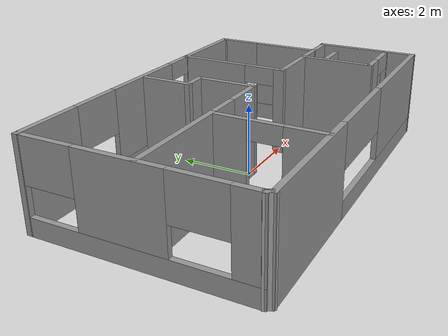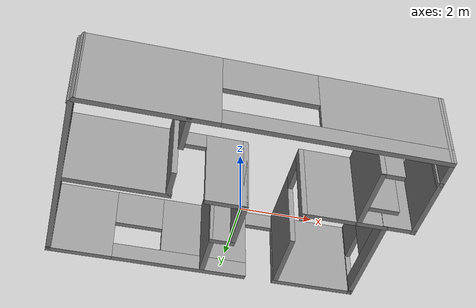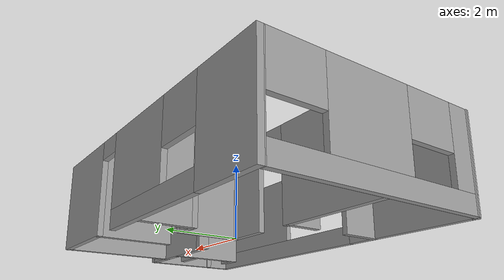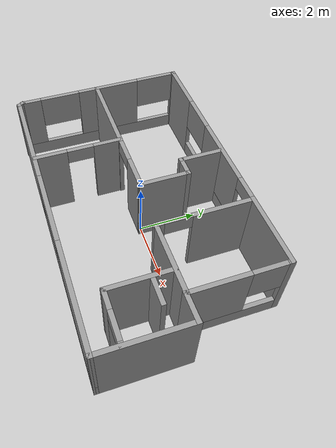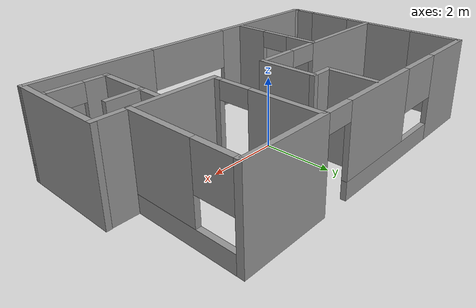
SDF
<?xml version='1.0'?>
<sdf version='1.6'>
  <model name='HouseDoors'>
    <pose frame=''>-0.013482 -0.004027 0 0 -0 0</pose>
    <link name='Wall_30'>
      <pose frame=''>0.053047 -2.98078 0 0 -0 -0.001213</pose>
      <visual name='Wall_30_Visual_0'>
        <pose frame=''>-3.13618 0 1.25 0 -0 0</pose>
        <geometry>
          <box>
            <size>3.74957 0.15 2.5</size>
          </box>
        </geometry>
        <material>
          <script>
            <uri>file://media/materials/scripts/gazebo.material</uri>
            <name>Gazebo/Grey</name>
          </script>
          <ambient>1 1 1 1</ambient>
        </material>
        <meta>
          <layer>0</layer>
        </meta>
      </visual>
      <collision name='Wall_30_Collision_0'>
        <geometry>
          <box>
            <size>3.74957 0.15 2.5</size>
          </box>
        </geometry>
        <pose frame=''>-3.13618 0 1.25 0 -0 0</pose>
      </collision>
      <visual name='Wall_30_Visual_1'>
        <pose frame=''>1.87479 0 0.25 0 -0 0</pose>
        <geometry>
          <box>
            <size>6.27236 0.15 0.5</size>
          </box>
        </geometry>
        <material>
          <script>
            <uri>file://media/materials/scripts/gazebo.material</uri>
            <name>Gazebo/Grey</name>
          </script>
          <ambient>1 1 1 1</ambient>
        </material>
        <meta>
          <layer>0</layer>
        </meta>
      </visual>
      <collision name='Wall_30_Collision_1'>
        <geometry>
          <box>
            <size>6.27236 0.15 0.5</size>
          </box>
        </geometry>
        <pose frame=''>1.87479 0 0.25 0 -0 0</pose>
      </collision>
      <visual name='Wall_30_Visual_2'>
        <pose frame=''>3.19383 0 1.5 0 -0 0</pose>
        <geometry>
          <box>
            <size>3.63428 0.15 2</size>
          </box>
        </geometry>
        <material>
          <script>
            <uri>file://media/materials/scripts/gazebo.material</uri>
            <name>Gazebo/Grey</name>
          </script>
          <ambient>1 1 1 1</ambient>
        </material>
        <meta>
          <layer>0</layer>
        </meta>
      </visual>
      <collision name='Wall_30_Collision_2'>
        <geometry>
          <box>
            <size>3.63428 0.15 2</size>
          </box>
        </geometry>
        <pose frame=''>3.19383 0 1.5 0 -0 0</pose>
      </collision>
      <visual name='Wall_30_Visual_3'>
        <pose frame=''>0.057646 0 1.9 0 -0 0</pose>
        <geometry>
          <box>
            <size>2.63808 0.15 1.2</size>
          </box>
        </geometry>
        <material>
          <script>
            <uri>file://media/materials/scripts/gazebo.material</uri>
            <name>Gazebo/Grey</name>
          </script>
          <ambient>1 1 1 1</ambient>
        </material>
        <meta>
          <layer>0</layer>
        </meta>
      </visual>
      <collision name='Wall_30_Collision_3'>
        <geometry>
          <box>
            <size>2.63808 0.15 1.2</size>
          </box>
        </geometry>
        <pose frame=''>0.057646 0 1.9 0 -0 0</pose>
      </collision>
    </link>
    <link name='Wall_33'>
      <pose frame=''>-4.96099 0.077905 0 0 -0 -1.5708</pose>
      <visual name='Wall_33_Visual_0'>
        <pose frame=''>-2.91122 0 1.25 0 -0 0</pose>
        <geometry>
          <box>
            <size>0.17755 0.15 2.5</size>
          </box>
        </geometry>
        <material>
          <script>
            <uri>file://media/materials/scripts/gazebo.material</uri>
            <name>Gazebo/Grey</name>
          </script>
          <ambient>1 1 1 1</ambient>
        </material>
        <meta>
          <layer>0</layer>
        </meta>
      </visual>
      <collision name='Wall_33_Collision_0'>
        <geometry>
          <box>
            <size>0.17755 0.15 2.5</size>
          </box>
        </geometry>
        <pose frame=''>-2.91122 0 1.25 0 -0 0</pose>
      </collision>
      <visual name='Wall_33_Visual_1'>
        <pose frame=''>0.088775 0 0.25 0 -0 0</pose>
        <geometry>
          <box>
            <size>5.82245 0.15 0.5</size>
          </box>
        </geometry>
        <material>
          <script>
            <uri>file://media/materials/scripts/gazebo.material</uri>
            <name>Gazebo/Grey</name>
          </script>
          <ambient>1 1 1 1</ambient>
        </material>
        <meta>
          <layer>0</layer>
        </meta>
      </visual>
      <collision name='Wall_33_Collision_1'>
        <geometry>
          <box>
            <size>5.82245 0.15 0.5</size>
          </box>
        </geometry>
        <pose frame=''>0.088775 0 0.25 0 -0 0</pose>
      </collision>
      <visual name='Wall_33_Visual_2'>
        <pose frame=''>-0.299837 0 1.5 0 -0 0</pose>
        <geometry>
          <box>
            <size>2.28143 0.15 2</size>
          </box>
        </geometry>
        <material>
          <script>
            <uri>file://media/materials/scripts/gazebo.material</uri>
            <name>Gazebo/Grey</name>
          </script>
          <ambient>1 1 1 1</ambient>
        </material>
        <meta>
          <layer>0</layer>
        </meta>
      </visual>
      <collision name='Wall_33_Collision_2'>
        <geometry>
          <box>
            <size>2.28143 0.15 2</size>
          </box>
        </geometry>
        <pose frame=''>-0.299837 0 1.5 0 -0 0</pose>
      </collision>
      <visual name='Wall_33_Visual_3'>
        <pose frame=''>2.63123 0 1.5 0 -0 0</pose>
        <geometry>
          <box>
            <size>0.73755 0.15 2</size>
          </box>
        </geometry>
        <material>
          <script>
            <uri>file://media/materials/scripts/gazebo.material</uri>
            <name>Gazebo/Grey</name>
          </script>
          <ambient>1 1 1 1</ambient>
        </material>
        <meta>
          <layer>0</layer>
        </meta>
      </visual>
      <collision name='Wall_33_Collision_3'>
        <geometry>
          <box>
            <size>0.73755 0.15 2</size>
          </box>
        </geometry>
        <pose frame=''>2.63123 0 1.5 0 -0 0</pose>
      </collision>
      <visual name='Wall_33_Visual_4'>
        <pose frame=''>-2.1315 0 1.9 0 -0 0</pose>
        <geometry>
          <box>
            <size>1.3819 0.15 1.2</size>
          </box>
        </geometry>
        <material>
          <script>
            <uri>file://media/materials/scripts/gazebo.material</uri>
            <name>Gazebo/Grey</name>
          </script>
          <ambient>1 1 1 1</ambient>
        </material>
        <meta>
          <layer>0</layer>
        </meta>
      </visual>
      <collision name='Wall_33_Collision_4'>
        <geometry>
          <box>
            <size>1.3819 0.15 1.2</size>
          </box>
        </geometry>
        <pose frame=''>-2.1315 0 1.9 0 -0 0</pose>
      </collision>
      <visual name='Wall_33_Visual_5'>
        <pose frame=''>1.55166 0 1.9 0 -0 0</pose>
        <geometry>
          <box>
            <size>1.42158 0.15 1.2</size>
          </box>
        </geometry>
        <material>
          <script>
            <uri>file://media/materials/scripts/gazebo.material</uri>
            <name>Gazebo/Grey</name>
          </script>
          <ambient>1 1 1 1</ambient>
        </material>
        <meta>
          <layer>0</layer>
        </meta>
      </visual>
      <collision name='Wall_33_Collision_5'>
        <geometry>
          <box>
            <size>1.42158 0.15 1.2</size>
          </box>
        </geometry>
        <pose frame=''>1.55166 0 1.9 0 -0 0</pose>
      </collision>
    </link>
    <link name='Wall_34'>
      <collision name='Wall_34_Collision'>
        <geometry>
          <box>
            <size>0.299676 0.15 2.5</size>
          </box>
        </geometry>
        <pose frame=''>0 0 1.25 0 -0 0</pose>
      </collision>
      <visual name='Wall_34_Visual'>
        <pose frame=''>0 0 1.25 0 -0 0</pose>
        <geometry>
          <box>
            <size>0.299676 0.15 2.5</size>
          </box>
        </geometry>
        <material>
          <script>
            <uri>file://media/materials/scripts/gazebo.material</uri>
            <name>Gazebo/Grey</name>
          </script>
          <ambient>1 1 1 1</ambient>
        </material>
        <meta>
          <layer>0</layer>
        </meta>
      </visual>
      <pose frame=''>-4.92195 -2.91094 0 0 -0 -1.02204</pose>
    </link>
    <link name='Wall_36'>
      <pose frame=''>-0.410991 3.00291 0 0 -0 0</pose>
      <visual name='Wall_36_Visual_0'>
        <pose frame=''>-3.66999 0 1.25 0 -0 0</pose>
        <geometry>
          <box>
            <size>1.91003 0.15 2.5</size>
          </box>
        </geometry>
        <material>
          <script>
            <uri>file://media/materials/scripts/gazebo.material</uri>
            <name>Gazebo/Grey</name>
          </script>
          <ambient>1 1 1 1</ambient>
        </material>
        <meta>
          <layer>0</layer>
        </meta>
      </visual>
      <collision name='Wall_36_Collision_0'>
        <geometry>
          <box>
            <size>1.91003 0.15 2.5</size>
          </box>
        </geometry>
        <pose frame=''>-3.66999 0 1.25 0 -0 0</pose>
      </collision>
      <visual name='Wall_36_Visual_1'>
        <pose frame=''>3.36376 0 1.25 0 -0 0</pose>
        <geometry>
          <box>
            <size>2.52248 0.15 2.5</size>
          </box>
        </geometry>
        <material>
          <script>
            <uri>file://media/materials/scripts/gazebo.material</uri>
            <name>Gazebo/Grey</name>
          </script>
          <ambient>1 1 1 1</ambient>
        </material>
        <meta>
          <layer>0</layer>
        </meta>
      </visual>
      <collision name='Wall_36_Collision_1'>
        <geometry>
          <box>
            <size>2.52248 0.15 2.5</size>
          </box>
        </geometry>
        <pose frame=''>3.36376 0 1.25 0 -0 0</pose>
      </collision>
      <visual name='Wall_36_Visual_2'>
        <pose frame=''>-0.71655 0 0.25 0 -0 0</pose>
        <geometry>
          <box>
            <size>3.99685 0.15 0.5</size>
          </box>
        </geometry>
        <material>
          <script>
            <uri>file://media/materials/scripts/gazebo.material</uri>
            <name>Gazebo/Grey</name>
          </script>
          <ambient>1 1 1 1</ambient>
        </material>
        <meta>
          <layer>0</layer>
        </meta>
      </visual>
      <collision name='Wall_36_Collision_2'>
        <geometry>
          <box>
            <size>3.99685 0.15 0.5</size>
          </box>
        </geometry>
        <pose frame=''>-0.71655 0 0.25 0 -0 0</pose>
      </collision>
      <visual name='Wall_36_Visual_3'>
        <pose frame=''>-0.012375 0 1.5 0 -0 0</pose>
        <geometry>
          <box>
            <size>2.5885 0.15 2</size>
          </box>
        </geometry>
        <material>
          <script>
            <uri>file://media/materials/scripts/gazebo.material</uri>
            <name>Gazebo/Grey</name>
          </script>
          <ambient>1 1 1 1</ambient>
        </material>
        <meta>
          <layer>0</layer>
        </meta>
      </visual>
      <collision name='Wall_36_Collision_3'>
        <geometry>
          <box>
            <size>2.5885 0.15 2</size>
          </box>
        </geometry>
        <pose frame=''>-0.012375 0 1.5 0 -0 0</pose>
      </collision>
      <visual name='Wall_36_Visual_4'>
        <pose frame=''>-2.0108 0 1.9 0 -0 0</pose>
        <geometry>
          <box>
            <size>1.40835 0.15 1.2</size>
          </box>
        </geometry>
        <material>
          <script>
            <uri>file://media/materials/scripts/gazebo.material</uri>
            <name>Gazebo/Grey</name>
          </script>
          <ambient>1 1 1 1</ambient>
        </material>
        <meta>
          <layer>0</layer>
        </meta>
      </visual>
      <collision name='Wall_36_Collision_4'>
        <geometry>
          <box>
            <size>1.40835 0.15 1.2</size>
          </box>
        </geometry>
        <pose frame=''>-2.0108 0 1.9 0 -0 0</pose>
      </collision>
      <visual name='Wall_36_Visual_5'>
        <pose frame=''>1.6922 0 2.25 0 -0 0</pose>
        <geometry>
          <box>
            <size>0.82065 0.15 0.5</size>
          </box>
        </geometry>
        <material>
          <script>
            <uri>file://media/materials/scripts/gazebo.material</uri>
            <name>Gazebo/Grey</name>
          </script>
          <ambient>1 1 1 1</ambient>
        </material>
        <meta>
          <layer>0</layer>
        </meta>
      </visual>
      <collision name='Wall_36_Collision_5'>
        <geometry>
          <box>
            <size>0.82065 0.15 0.5</size>
          </box>
        </geometry>
        <pose frame=''>1.6922 0 2.25 0 -0 0</pose>
      </collision>
    </link>
    <link name='Wall_37'>
      <pose frame=''>4.13901 1.43307 0 0 -0 -1.5708</pose>
      <visual name='Wall_37_Visual_0'>
        <pose frame=''>-1.54522 0 1.25 0 -0 0</pose>
        <geometry>
          <box>
            <size>0.199238 0.15 2.5</size>
          </box>
        </geometry>
        <material>
          <script>
            <uri>file://media/materials/scripts/gazebo.material</uri>
            <name>Gazebo/Grey</name>
          </script>
          <ambient>1 1 1 1</ambient>
        </material>
        <meta>
          <layer>0</layer>
        </meta>
      </visual>
      <collision name='Wall_37_Collision_0'>
        <geometry>
          <box>
            <size>0.199238 0.15 2.5</size>
          </box>
        </geometry>
        <pose frame=''>-1.54522 0 1.25 0 -0 0</pose>
      </collision>
      <visual name='Wall_37_Visual_1'>
        <pose frame=''>0.099619 0 0.25 0 -0 0</pose>
        <geometry>
          <box>
            <size>3.09044 0.15 0.5</size>
          </box>
        </geometry>
        <material>
          <script>
            <uri>file://media/materials/scripts/gazebo.material</uri>
            <name>Gazebo/Grey</name>
          </script>
          <ambient>1 1 1 1</ambient>
        </material>
        <meta>
          <layer>0</layer>
        </meta>
      </visual>
      <collision name='Wall_37_Collision_1'>
        <geometry>
          <box>
            <size>3.09044 0.15 0.5</size>
          </box>
        </geometry>
        <pose frame=''>0.099619 0 0.25 0 -0 0</pose>
      </collision>
      <visual name='Wall_37_Visual_2'>
        <pose frame=''>0.645094 0 1.5 0 -0 0</pose>
        <geometry>
          <box>
            <size>1.99949 0.15 2</size>
          </box>
        </geometry>
        <material>
          <script>
            <uri>file://media/materials/scripts/gazebo.material</uri>
            <name>Gazebo/Grey</name>
          </script>
          <ambient>1 1 1 1</ambient>
        </material>
        <meta>
          <layer>0</layer>
        </meta>
      </visual>
      <collision name='Wall_37_Collision_2'>
        <geometry>
          <box>
            <size>1.99949 0.15 2</size>
          </box>
        </geometry>
        <pose frame=''>0.645094 0 1.5 0 -0 0</pose>
      </collision>
      <visual name='Wall_37_Visual_3'>
        <pose frame=''>-0.900125 0 1.9 0 -0 0</pose>
        <geometry>
          <box>
            <size>1.09095 0.15 1.2</size>
          </box>
        </geometry>
        <material>
          <script>
            <uri>file://media/materials/scripts/gazebo.material</uri>
            <name>Gazebo/Grey</name>
          </script>
          <ambient>1 1 1 1</ambient>
        </material>
        <meta>
          <layer>0</layer>
        </meta>
      </visual>
      <collision name='Wall_37_Collision_3'>
        <geometry>
          <box>
            <size>1.09095 0.15 1.2</size>
          </box>
        </geometry>
        <pose frame=''>-0.900125 0 1.9 0 -0 0</pose>
      </collision>
    </link>
    <link name='Wall_38'>
      <collision name='Wall_38_Collision'>
        <geometry>
          <box>
            <size>1 0.15 2.5</size>
          </box>
        </geometry>
        <pose frame=''>0 0 1.25 0 -0 0</pose>
      </collision>
      <visual name='Wall_38_Visual'>
        <pose frame=''>0 0 1.25 0 -0 0</pose>
        <geometry>
          <box>
            <size>1 0.15 2.5</size>
          </box>
        </geometry>
        <material>
          <script>
            <uri>file://media/materials/scripts/gazebo.material</uri>
            <name>Gazebo/Grey</name>
          </script>
          <ambient>1 1 1 1</ambient>
        </material>
        <meta>
          <layer>0</layer>
        </meta>
      </visual>
      <pose frame=''>4.56401 -0.149995 0 0 -0 0</pose>
    </link>
    <link name='Wall_39'>
      <collision name='Wall_39_Collision'>
        <geometry>
          <box>
            <size>3 0.15 2.5</size>
          </box>
        </geometry>
        <pose frame=''>0 0 1.25 0 -0 0</pose>
      </collision>
      <visual name='Wall_39_Visual'>
        <pose frame=''>0 0 1.25 0 -0 0</pose>
        <geometry>
          <box>
            <size>3 0.15 2.5</size>
          </box>
        </geometry>
        <material>
          <script>
            <uri>file://media/materials/scripts/gazebo.material</uri>
            <name>Gazebo/Grey</name>
          </script>
          <ambient>1 1 1 1</ambient>
        </material>
        <meta>
          <layer>0</layer>
        </meta>
      </visual>
      <pose frame=''>4.98901 -1.56177 0 0 -0 -1.5708</pose>
    </link>
    <link name='Wall_41'>
      <pose frame=''>-2.41099 -0.05207 0 0 -0 0</pose>
      <visual name='Wall_41_Visual_0'>
        <pose frame=''>-1.0668 0 1.25 0 -0 0</pose>
        <geometry>
          <box>
            <size>3.1164 0.15 2.5</size>
          </box>
        </geometry>
        <material>
          <script>
            <uri>file://media/materials/scripts/gazebo.material</uri>
            <name>Gazebo/Grey</name>
          </script>
          <ambient>1 1 1 1</ambient>
        </material>
        <meta>
          <layer>0</layer>
        </meta>
      </visual>
      <collision name='Wall_41_Collision_0'>
        <geometry>
          <box>
            <size>3.1164 0.15 2.5</size>
          </box>
        </geometry>
        <pose frame=''>-1.0668 0 1.25 0 -0 0</pose>
      </collision>
      <visual name='Wall_41_Visual_1'>
        <pose frame=''>2.0082 0 1.25 0 -0 0</pose>
        <geometry>
          <box>
            <size>1.2336 0.15 2.5</size>
          </box>
        </geometry>
        <material>
          <script>
            <uri>file://media/materials/scripts/gazebo.material</uri>
            <name>Gazebo/Grey</name>
          </script>
          <ambient>1 1 1 1</ambient>
        </material>
        <meta>
          <layer>0</layer>
        </meta>
      </visual>
      <collision name='Wall_41_Collision_1'>
        <geometry>
          <box>
            <size>1.2336 0.15 2.5</size>
          </box>
        </geometry>
        <pose frame=''>2.0082 0 1.25 0 -0 0</pose>
      </collision>
      <visual name='Wall_41_Visual_2'>
        <pose frame=''>0.9414 0 2.25 0 -0 0</pose>
        <geometry>
          <box>
            <size>0.9 0.15 0.5</size>
          </box>
        </geometry>
        <material>
          <script>
            <uri>file://media/materials/scripts/gazebo.material</uri>
            <name>Gazebo/Grey</name>
          </script>
          <ambient>1 1 1 1</ambient>
        </material>
        <meta>
          <layer>0</layer>
        </meta>
      </visual>
      <collision name='Wall_41_Collision_2'>
        <geometry>
          <box>
            <size>0.9 0.15 0.5</size>
          </box>
        </geometry>
        <pose frame=''>0.9414 0 2.25 0 -0 0</pose>
      </collision>
    </link>
    <link name='Wall_42'>
      <collision name='Wall_42_Collision'>
        <geometry>
          <box>
            <size>1.75 0.15 2.5</size>
          </box>
        </geometry>
        <pose frame=''>0 0 1.25 0 -0 0</pose>
      </collision>
      <visual name='Wall_42_Visual'>
        <pose frame=''>0 0 1.25 0 -0 0</pose>
        <geometry>
          <box>
            <size>1.75 0.15 2.5</size>
          </box>
        </geometry>
        <material>
          <script>
            <uri>file://media/materials/scripts/gazebo.material</uri>
            <name>Gazebo/Grey</name>
          </script>
          <ambient>1 1 1 1</ambient>
        </material>
        <meta>
          <layer>0</layer>
        </meta>
      </visual>
      <pose frame=''>0.139009 0.74793 0 0 -0 1.5708</pose>
    </link>
    <link name='Wall_43'>
      <collision name='Wall_43_Collision'>
        <geometry>
          <box>
            <size>0.75 0.15 2.5</size>
          </box>
        </geometry>
        <pose frame=''>0 0 1.25 0 -0 0</pose>
      </collision>
      <visual name='Wall_43_Visual'>
        <pose frame=''>0 0 1.25 0 -0 0</pose>
        <geometry>
          <box>
            <size>0.75 0.15 2.5</size>
          </box>
        </geometry>
        <material>
          <script>
            <uri>file://media/materials/scripts/gazebo.material</uri>
            <name>Gazebo/Grey</name>
          </script>
          <ambient>1 1 1 1</ambient>
        </material>
        <meta>
          <layer>0</layer>
        </meta>
      </visual>
      <pose frame=''>-0.160991 1.54793 0 0 -0 3.14159</pose>
    </link>
    <link name='Wall_45'>
      <collision name='Wall_45_Collision'>
        <geometry>
          <box>
            <size>1.5 0.15 2.5</size>
          </box>
        </geometry>
        <pose frame=''>0 0 1.25 0 -0 0</pose>
      </collision>
      <visual name='Wall_45_Visual'>
        <pose frame=''>0 0 1.25 0 -0 0</pose>
        <geometry>
          <box>
            <size>1.5 0.15 2.5</size>
          </box>
        </geometry>
        <material>
          <script>
            <uri>file://media/materials/scripts/gazebo.material</uri>
            <name>Gazebo/Grey</name>
          </script>
          <ambient>1 1 1 1</ambient>
        </material>
        <meta>
          <layer>0</layer>
        </meta>
      </visual>
      <pose frame=''>-0.46099 2.22293 0 0 -0 1.5708</pose>
    </link>
    <link name='Wall_47'>
      <pose frame=''>-2.02504 -1.52334 0 0 -0 1.5708</pose>
      <visual name='Wall_47_Visual_0'>
        <pose frame=''>-0.933675 0 1.25 0 -0 0</pose>
        <geometry>
          <box>
            <size>1.13265 0.15 2.5</size>
          </box>
        </geometry>
        <material>
          <script>
            <uri>file://media/materials/scripts/gazebo.material</uri>
            <name>Gazebo/Grey</name>
          </script>
          <ambient>1 1 1 1</ambient>
        </material>
        <meta>
          <layer>0</layer>
        </meta>
      </visual>
      <collision name='Wall_47_Collision_0'>
        <geometry>
          <box>
            <size>1.13265 0.15 2.5</size>
          </box>
        </geometry>
        <pose frame=''>-0.933675 0 1.25 0 -0 0</pose>
      </collision>
      <visual name='Wall_47_Visual_1'>
        <pose frame=''>1.01632 0 1.25 0 -0 0</pose>
        <geometry>
          <box>
            <size>0.96735 0.15 2.5</size>
          </box>
        </geometry>
        <material>
          <script>
            <uri>file://media/materials/scripts/gazebo.material</uri>
            <name>Gazebo/Grey</name>
          </script>
          <ambient>1 1 1 1</ambient>
        </material>
        <meta>
          <layer>0</layer>
        </meta>
      </visual>
      <collision name='Wall_47_Collision_1'>
        <geometry>
          <box>
            <size>0.96735 0.15 2.5</size>
          </box>
        </geometry>
        <pose frame=''>1.01632 0 1.25 0 -0 0</pose>
      </collision>
      <visual name='Wall_47_Visual_2'>
        <pose frame=''>0.08265 0 2.25 0 -0 0</pose>
        <geometry>
          <box>
            <size>0.9 0.15 0.5</size>
          </box>
        </geometry>
        <material>
          <script>
            <uri>file://media/materials/scripts/gazebo.material</uri>
            <name>Gazebo/Grey</name>
          </script>
          <ambient>1 1 1 1</ambient>
        </material>
        <meta>
          <layer>0</layer>
        </meta>
      </visual>
      <collision name='Wall_47_Collision_2'>
        <geometry>
          <box>
            <size>0.9 0.15 0.5</size>
          </box>
        </geometry>
        <pose frame=''>0.08265 0 2.25 0 -0 0</pose>
      </collision>
    </link>
    <link name='Wall_49'>
      <pose frame=''>1.78376 1.41323 0 0 -0 -1.5708</pose>
      <visual name='Wall_49_Visual_0'>
        <pose frame=''>-0.609025 0 1.25 0 -0 0</pose>
        <geometry>
          <box>
            <size>2.03195 0.15 2.5</size>
          </box>
        </geometry>
        <material>
          <script>
            <uri>file://media/materials/scripts/gazebo.material</uri>
            <name>Gazebo/Grey</name>
          </script>
          <ambient>1 1 1 1</ambient>
        </material>
        <meta>
          <layer>0</layer>
        </meta>
      </visual>
      <collision name='Wall_49_Collision_0'>
        <geometry>
          <box>
            <size>2.03195 0.15 2.5</size>
          </box>
        </geometry>
        <pose frame=''>-0.609025 0 1.25 0 -0 0</pose>
      </collision>
      <visual name='Wall_49_Visual_1'>
        <pose frame=''>1.46598 0 1.25 0 -0 0</pose>
        <geometry>
          <box>
            <size>0.31805 0.15 2.5</size>
          </box>
        </geometry>
        <material>
          <script>
            <uri>file://media/materials/scripts/gazebo.material</uri>
            <name>Gazebo/Grey</name>
          </script>
          <ambient>1 1 1 1</ambient>
        </material>
        <meta>
          <layer>0</layer>
        </meta>
      </visual>
      <collision name='Wall_49_Collision_1'>
        <geometry>
          <box>
            <size>0.31805 0.15 2.5</size>
          </box>
        </geometry>
        <pose frame=''>1.46598 0 1.25 0 -0 0</pose>
      </collision>
      <visual name='Wall_49_Visual_2'>
        <pose frame=''>0.85695 0 2.25 0 -0 0</pose>
        <geometry>
          <box>
            <size>0.9 0.15 0.5</size>
          </box>
        </geometry>
        <material>
          <script>
            <uri>file://media/materials/scripts/gazebo.material</uri>
            <name>Gazebo/Grey</name>
          </script>
          <ambient>1 1 1 1</ambient>
        </material>
        <meta>
          <layer>0</layer>
        </meta>
      </visual>
      <collision name='Wall_49_Collision_2'>
        <geometry>
          <box>
            <size>0.9 0.15 0.5</size>
          </box>
        </geometry>
        <pose frame=''>0.85695 0 2.25 0 -0 0</pose>
      </collision>
    </link>
    <link name='Wall_50'>
      <collision name='Wall_50_Collision'>
        <geometry>
          <box>
            <size>2.5 0.15 2.5</size>
          </box>
        </geometry>
        <pose frame=''>0 0 1.25 0 -0 0</pose>
      </collision>
      <visual name='Wall_50_Visual'>
        <pose frame=''>0 0 1.25 0 -0 0</pose>
        <geometry>
          <box>
            <size>2.5 0.15 2.5</size>
          </box>
        </geometry>
        <material>
          <script>
            <uri>file://media/materials/scripts/gazebo.material</uri>
            <name>Gazebo/Grey</name>
          </script>
          <ambient>1 1 1 1</ambient>
        </material>
        <meta>
          <layer>0</layer>
        </meta>
      </visual>
      <pose frame=''>2.95876 -0.13677 0 0 -0 0</pose>
    </link>
    <link name='Wall_52'>
      <collision name='Wall_52_Collision'>
        <geometry>
          <box>
            <size>2.17069 0.15 2.5</size>
          </box>
        </geometry>
        <pose frame=''>0 0 1.25 0 -0 0</pose>
      </collision>
      <visual name='Wall_52_Visual'>
        <pose frame=''>0 0 1.25 0 -0 0</pose>
        <geometry>
          <box>
            <size>2.17069 0.15 2.5</size>
          </box>
        </geometry>
        <material>
          <script>
            <uri>file://media/materials/scripts/gazebo.material</uri>
            <name>Gazebo/Grey</name>
          </script>
          <ambient>1 1 1 1</ambient>
        </material>
        <meta>
          <layer>0</layer>
        </meta>
      </visual>
      <pose frame=''>3.35753 -1.1682 0 0 -0 -1.5708</pose>
    </link>
    <link name='Wall_53'>
      <pose frame=''>4.15754 -2.17852 0 0 -0 0</pose>
      <visual name='Wall_53_Visual_0'>
        <pose frame=''>-0.5335 0 1.25 0 -0 0</pose>
        <geometry>
          <box>
            <size>0.683 0.15 2.5</size>
          </box>
        </geometry>
        <material>
          <script>
            <uri>file://media/materials/scripts/gazebo.material</uri>
            <name>Gazebo/Grey</name>
          </script>
          <ambient>1 1 1 1</ambient>
        </material>
        <meta>
          <layer>0</layer>
        </meta>
      </visual>
      <collision name='Wall_53_Collision_0'>
        <geometry>
          <box>
            <size>0.683 0.15 2.5</size>
          </box>
        </geometry>
        <pose frame=''>-0.5335 0 1.25 0 -0 0</pose>
      </collision>
      <visual name='Wall_53_Visual_1'>
        <pose frame=''>0.7915 0 1.25 0 -0 0</pose>
        <geometry>
          <box>
            <size>0.167 0.15 2.5</size>
          </box>
        </geometry>
        <material>
          <script>
            <uri>file://media/materials/scripts/gazebo.material</uri>
            <name>Gazebo/Grey</name>
          </script>
          <ambient>1 1 1 1</ambient>
        </material>
        <meta>
          <layer>0</layer>
        </meta>
      </visual>
      <collision name='Wall_53_Collision_1'>
        <geometry>
          <box>
            <size>0.167 0.15 2.5</size>
          </box>
        </geometry>
        <pose frame=''>0.7915 0 1.25 0 -0 0</pose>
      </collision>
      <visual name='Wall_53_Visual_2'>
        <pose frame=''>0.258 0 2.25 0 -0 0</pose>
        <geometry>
          <box>
            <size>0.9 0.15 0.5</size>
          </box>
        </geometry>
        <material>
          <script>
            <uri>file://media/materials/scripts/gazebo.material</uri>
            <name>Gazebo/Grey</name>
          </script>
          <ambient>1 1 1 1</ambient>
        </material>
        <meta>
          <layer>0</layer>
        </meta>
      </visual>
      <collision name='Wall_53_Collision_2'>
        <geometry>
          <box>
            <size>0.9 0.15 0.5</size>
          </box>
        </geometry>
        <pose frame=''>0.258 0 2.25 0 -0 0</pose>
      </collision>
    </link>
    <link name='Wall_55'>
      <collision name='Wall_55_Collision'>
        <geometry>
          <box>
            <size>1 0.15 2.5</size>
          </box>
        </geometry>
        <pose frame=''>0 0 1.25 0 -0 0</pose>
      </collision>
      <visual name='Wall_55_Visual'>
        <pose frame=''>0 0 1.25 0 -0 0</pose>
        <geometry>
          <box>
            <size>1 0.15 2.5</size>
          </box>
        </geometry>
        <material>
          <script>
            <uri>file://media/materials/scripts/gazebo.material</uri>
            <name>Gazebo/Grey</name>
          </script>
          <ambient>1 1 1 1</ambient>
        </material>
        <meta>
          <layer>0</layer>
        </meta>
      </visual>
      <pose frame=''>3.79576 -0.81912 0 0 -0 0</pose>
    </link>
    <static>1</static>
  </model>
</sdf>
